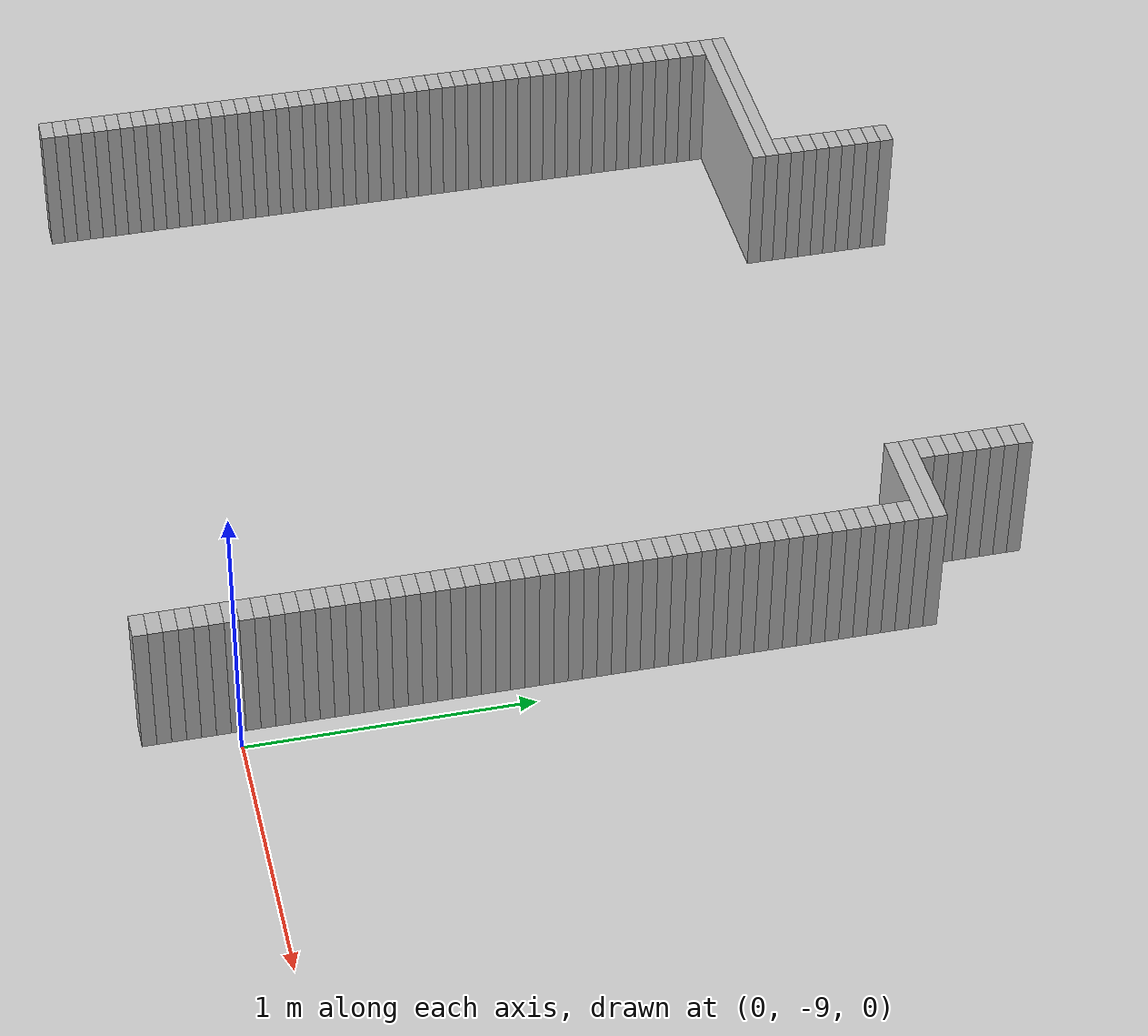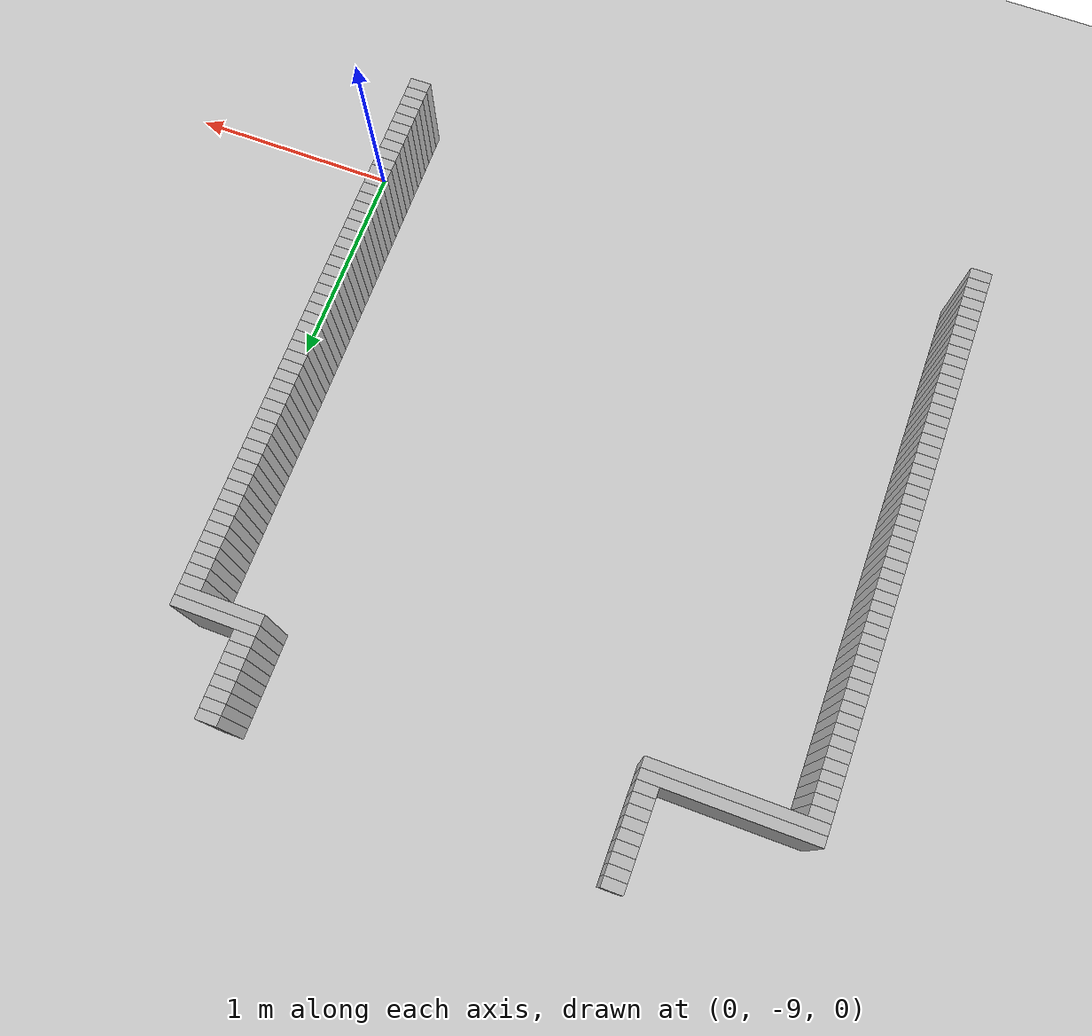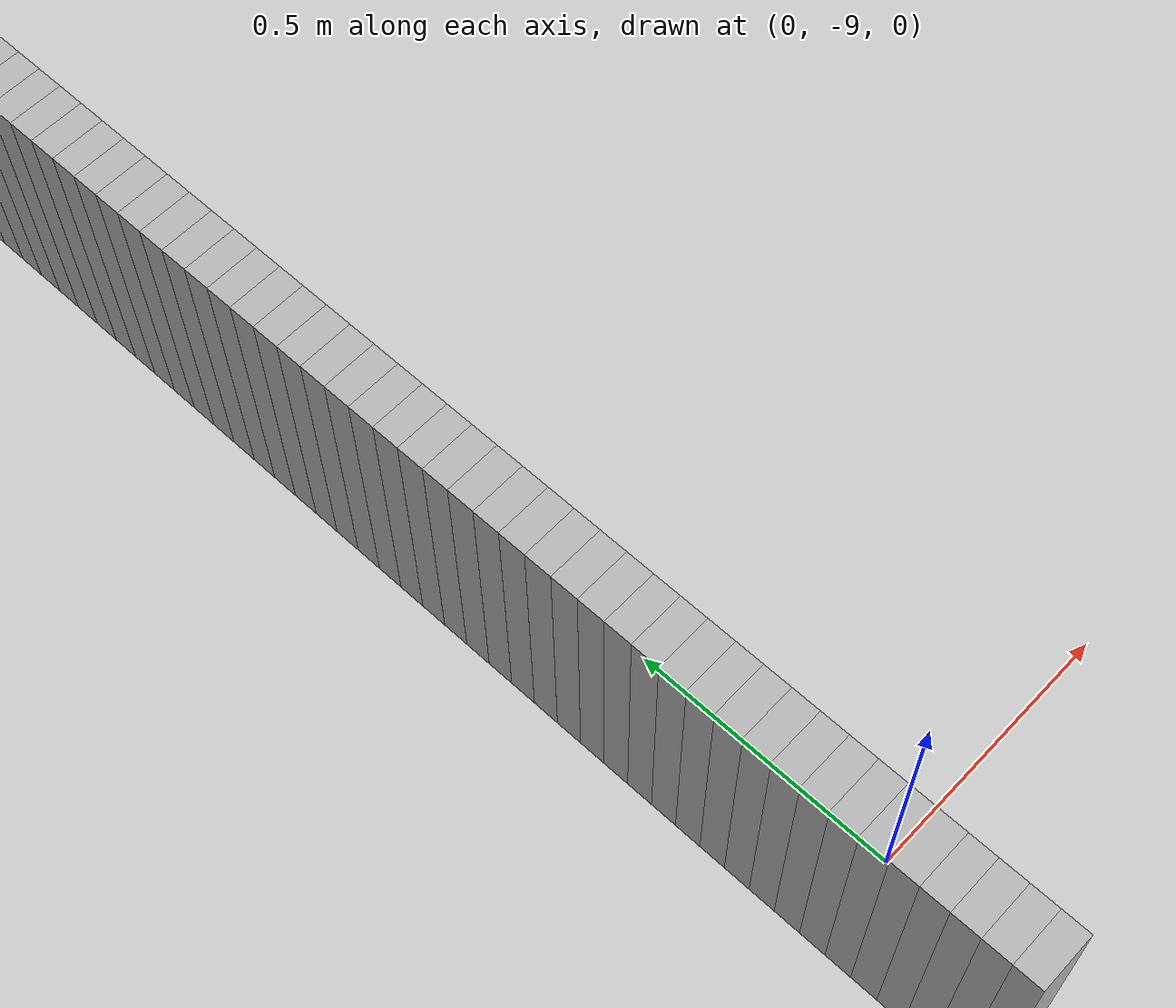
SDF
<sdf version="1.6">
 <world name="optimized_map_world">
  <include><uri>model://sun</uri></include>
  <include><uri>model://ground_plane</uri></include>
  <model name="obstacle_522">
   <static>true</static>
   <link name="link">
    <collision name="collision"><geometry><box><size>0.1 0.05 0.5</size></box></geometry></collision>
    <visual name="visual"><geometry><box><size>0.1 0.05 0.5</size></box></geometry></visual>
   </link>
   <pose>-2.224999999999998 -6.15 0.25 0 0 0</pose>
  </model>
  <model name="obstacle_526">
   <static>true</static>
   <link name="link">
    <collision name="collision"><geometry><box><size>0.1 0.05 0.5</size></box></geometry></collision>
    <visual name="visual"><geometry><box><size>0.1 0.05 0.5</size></box></geometry></visual>
   </link>
   <pose>-2.224999999999998 -6.199999999999999 0.25 0 0 0</pose>
  </model>
  <model name="obstacle_527">
   <static>true</static>
   <link name="link">
    <collision name="collision"><geometry><box><size>0.1 0.05 0.5</size></box></geometry></collision>
    <visual name="visual"><geometry><box><size>0.1 0.05 0.5</size></box></geometry></visual>
   </link>
   <pose>-0.42499999999999716 -6.199999999999999 0.25 0 0 0</pose>
  </model>
  <model name="obstacle_530">
   <static>true</static>
   <link name="link">
    <collision name="collision"><geometry><box><size>0.1 0.05 0.5</size></box></geometry></collision>
    <visual name="visual"><geometry><box><size>0.1 0.05 0.5</size></box></geometry></visual>
   </link>
   <pose>-2.224999999999998 -6.25 0.25 0 0 0</pose>
  </model>
  <model name="obstacle_531">
   <static>true</static>
   <link name="link">
    <collision name="collision"><geometry><box><size>0.1 0.05 0.5</size></box></geometry></collision>
    <visual name="visual"><geometry><box><size>0.1 0.05 0.5</size></box></geometry></visual>
   </link>
   <pose>-0.42499999999999716 -6.25 0.25 0 0 0</pose>
  </model>
  <model name="obstacle_534">
   <static>true</static>
   <link name="link">
    <collision name="collision"><geometry><box><size>0.1 0.05 0.5</size></box></geometry></collision>
    <visual name="visual"><geometry><box><size>0.1 0.05 0.5</size></box></geometry></visual>
   </link>
   <pose>-2.224999999999998 -6.300000000000001 0.25 0 0 0</pose>
  </model>
  <model name="obstacle_535">
   <static>true</static>
   <link name="link">
    <collision name="collision"><geometry><box><size>0.1 0.05 0.5</size></box></geometry></collision>
    <visual name="visual"><geometry><box><size>0.1 0.05 0.5</size></box></geometry></visual>
   </link>
   <pose>-0.42499999999999716 -6.300000000000001 0.25 0 0 0</pose>
  </model>
  <model name="obstacle_538">
   <static>true</static>
   <link name="link">
    <collision name="collision"><geometry><box><size>0.1 0.05 0.5</size></box></geometry></collision>
    <visual name="visual"><geometry><box><size>0.1 0.05 0.5</size></box></geometry></visual>
   </link>
   <pose>-2.224999999999998 -6.35 0.25 0 0 0</pose>
  </model>
  <model name="obstacle_539">
   <static>true</static>
   <link name="link">
    <collision name="collision"><geometry><box><size>0.1 0.05 0.5</size></box></geometry></collision>
    <visual name="visual"><geometry><box><size>0.1 0.05 0.5</size></box></geometry></visual>
   </link>
   <pose>-0.42499999999999716 -6.35 0.25 0 0 0</pose>
  </model>
  <model name="obstacle_542">
   <static>true</static>
   <link name="link">
    <collision name="collision"><geometry><box><size>0.1 0.05 0.5</size></box></geometry></collision>
    <visual name="visual"><geometry><box><size>0.1 0.05 0.5</size></box></geometry></visual>
   </link>
   <pose>-2.224999999999998 -6.4 0.25 0 0 0</pose>
  </model>
  <model name="obstacle_543">
   <static>true</static>
   <link name="link">
    <collision name="collision"><geometry><box><size>0.1 0.05 0.5</size></box></geometry></collision>
    <visual name="visual"><geometry><box><size>0.1 0.05 0.5</size></box></geometry></visual>
   </link>
   <pose>-0.42499999999999716 -6.4 0.25 0 0 0</pose>
  </model>
  <model name="obstacle_546">
   <static>true</static>
   <link name="link">
    <collision name="collision"><geometry><box><size>0.1 0.05 0.5</size></box></geometry></collision>
    <visual name="visual"><geometry><box><size>0.1 0.05 0.5</size></box></geometry></visual>
   </link>
   <pose>-2.224999999999998 -6.449999999999999 0.25 0 0 0</pose>
  </model>
  <model name="obstacle_547">
   <static>true</static>
   <link name="link">
    <collision name="collision"><geometry><box><size>0.1 0.05 0.5</size></box></geometry></collision>
    <visual name="visual"><geometry><box><size>0.1 0.05 0.5</size></box></geometry></visual>
   </link>
   <pose>-0.42499999999999716 -6.449999999999999 0.25 0 0 0</pose>
  </model>
  <model name="obstacle_550">
   <static>true</static>
   <link name="link">
    <collision name="collision"><geometry><box><size>0.1 0.05 0.5</size></box></geometry></collision>
    <visual name="visual"><geometry><box><size>0.1 0.05 0.5</size></box></geometry></visual>
   </link>
   <pose>-2.224999999999998 -6.5 0.25 0 0 0</pose>
  </model>
  <model name="obstacle_551">
   <static>true</static>
   <link name="link">
    <collision name="collision"><geometry><box><size>0.1 0.05 0.5</size></box></geometry></collision>
    <visual name="visual"><geometry><box><size>0.1 0.05 0.5</size></box></geometry></visual>
   </link>
   <pose>-0.42499999999999716 -6.5 0.25 0 0 0</pose>
  </model>
  <model name="obstacle_554">
   <static>true</static>
   <link name="link">
    <collision name="collision"><geometry><box><size>0.1 0.05 0.5</size></box></geometry></collision>
    <visual name="visual"><geometry><box><size>0.1 0.05 0.5</size></box></geometry></visual>
   </link>
   <pose>-2.224999999999998 -6.550000000000001 0.25 0 0 0</pose>
  </model>
  <model name="obstacle_555">
   <static>true</static>
   <link name="link">
    <collision name="collision"><geometry><box><size>0.1 0.05 0.5</size></box></geometry></collision>
    <visual name="visual"><geometry><box><size>0.1 0.05 0.5</size></box></geometry></visual>
   </link>
   <pose>-0.42499999999999716 -6.550000000000001 0.25 0 0 0</pose>
  </model>
  <model name="obstacle_558">
   <static>true</static>
   <link name="link">
    <collision name="collision"><geometry><box><size>0.8 0.05 0.5</size></box></geometry></collision>
    <visual name="visual"><geometry><box><size>0.8 0.05 0.5</size></box></geometry></visual>
   </link>
   <pose>-2.5749999999999993 -6.6 0.25 0 0 0</pose>
  </model>
  <model name="obstacle_559">
   <static>true</static>
   <link name="link">
    <collision name="collision"><geometry><box><size>0.4 0.05 0.5</size></box></geometry></collision>
    <visual name="visual"><geometry><box><size>0.4 0.05 0.5</size></box></geometry></visual>
   </link>
   <pose>-0.2749999999999986 -6.6 0.25 0 0 0</pose>
  </model>
  <model name="obstacle_562">
   <static>true</static>
   <link name="link">
    <collision name="collision"><geometry><box><size>0.8 0.05 0.5</size></box></geometry></collision>
    <visual name="visual"><geometry><box><size>0.8 0.05 0.5</size></box></geometry></visual>
   </link>
   <pose>-2.5749999999999993 -6.65 0.25 0 0 0</pose>
  </model>
  <model name="obstacle_563">
   <static>true</static>
   <link name="link">
    <collision name="collision"><geometry><box><size>0.4 0.05 0.5</size></box></geometry></collision>
    <visual name="visual"><geometry><box><size>0.4 0.05 0.5</size></box></geometry></visual>
   </link>
   <pose>-0.2749999999999986 -6.65 0.25 0 0 0</pose>
  </model>
  <model name="obstacle_566">
   <static>true</static>
   <link name="link">
    <collision name="collision"><geometry><box><size>0.1 0.05 0.5</size></box></geometry></collision>
    <visual name="visual"><geometry><box><size>0.1 0.05 0.5</size></box></geometry></visual>
   </link>
   <pose>-2.924999999999999 -6.699999999999999 0.25 0 0 0</pose>
  </model>
  <model name="obstacle_567">
   <static>true</static>
   <link name="link">
    <collision name="collision"><geometry><box><size>0.1 0.05 0.5</size></box></geometry></collision>
    <visual name="visual"><geometry><box><size>0.1 0.05 0.5</size></box></geometry></visual>
   </link>
   <pose>-0.125 -6.699999999999999 0.25 0 0 0</pose>
  </model>
  <model name="obstacle_570">
   <static>true</static>
   <link name="link">
    <collision name="collision"><geometry><box><size>0.1 0.05 0.5</size></box></geometry></collision>
    <visual name="visual"><geometry><box><size>0.1 0.05 0.5</size></box></geometry></visual>
   </link>
   <pose>-2.924999999999999 -6.75 0.25 0 0 0</pose>
  </model>
  <model name="obstacle_571">
   <static>true</static>
   <link name="link">
    <collision name="collision"><geometry><box><size>0.1 0.05 0.5</size></box></geometry></collision>
    <visual name="visual"><geometry><box><size>0.1 0.05 0.5</size></box></geometry></visual>
   </link>
   <pose>-0.125 -6.75 0.25 0 0 0</pose>
  </model>
  <model name="obstacle_574">
   <static>true</static>
   <link name="link">
    <collision name="collision"><geometry><box><size>0.1 0.05 0.5</size></box></geometry></collision>
    <visual name="visual"><geometry><box><size>0.1 0.05 0.5</size></box></geometry></visual>
   </link>
   <pose>-2.924999999999999 -6.800000000000001 0.25 0 0 0</pose>
  </model>
  <model name="obstacle_575">
   <static>true</static>
   <link name="link">
    <collision name="collision"><geometry><box><size>0.1 0.05 0.5</size></box></geometry></collision>
    <visual name="visual"><geometry><box><size>0.1 0.05 0.5</size></box></geometry></visual>
   </link>
   <pose>-0.125 -6.800000000000001 0.25 0 0 0</pose>
  </model>
  <model name="obstacle_578">
   <static>true</static>
   <link name="link">
    <collision name="collision"><geometry><box><size>0.1 0.05 0.5</size></box></geometry></collision>
    <visual name="visual"><geometry><box><size>0.1 0.05 0.5</size></box></geometry></visual>
   </link>
   <pose>-2.924999999999999 -6.85 0.25 0 0 0</pose>
  </model>
  <model name="obstacle_579">
   <static>true</static>
   <link name="link">
    <collision name="collision"><geometry><box><size>0.1 0.05 0.5</size></box></geometry></collision>
    <visual name="visual"><geometry><box><size>0.1 0.05 0.5</size></box></geometry></visual>
   </link>
   <pose>-0.125 -6.85 0.25 0 0 0</pose>
  </model>
  <model name="obstacle_582">
   <static>true</static>
   <link name="link">
    <collision name="collision"><geometry><box><size>0.1 0.05 0.5</size></box></geometry></collision>
    <visual name="visual"><geometry><box><size>0.1 0.05 0.5</size></box></geometry></visual>
   </link>
   <pose>-2.924999999999999 -6.9 0.25 0 0 0</pose>
  </model>
  <model name="obstacle_583">
   <static>true</static>
   <link name="link">
    <collision name="collision"><geometry><box><size>0.1 0.05 0.5</size></box></geometry></collision>
    <visual name="visual"><geometry><box><size>0.1 0.05 0.5</size></box></geometry></visual>
   </link>
   <pose>-0.125 -6.9 0.25 0 0 0</pose>
  </model>
  <model name="obstacle_586">
   <static>true</static>
   <link name="link">
    <collision name="collision"><geometry><box><size>0.1 0.05 0.5</size></box></geometry></collision>
    <visual name="visual"><geometry><box><size>0.1 0.05 0.5</size></box></geometry></visual>
   </link>
   <pose>-2.924999999999999 -6.949999999999999 0.25 0 0 0</pose>
  </model>
  <model name="obstacle_587">
   <static>true</static>
   <link name="link">
    <collision name="collision"><geometry><box><size>0.1 0.05 0.5</size></box></geometry></collision>
    <visual name="visual"><geometry><box><size>0.1 0.05 0.5</size></box></geometry></visual>
   </link>
   <pose>-0.125 -6.949999999999999 0.25 0 0 0</pose>
  </model>
  <model name="obstacle_590">
   <static>true</static>
   <link name="link">
    <collision name="collision"><geometry><box><size>0.1 0.05 0.5</size></box></geometry></collision>
    <visual name="visual"><geometry><box><size>0.1 0.05 0.5</size></box></geometry></visual>
   </link>
   <pose>-2.924999999999999 -7.0 0.25 0 0 0</pose>
  </model>
  <model name="obstacle_591">
   <static>true</static>
   <link name="link">
    <collision name="collision"><geometry><box><size>0.1 0.05 0.5</size></box></geometry></collision>
    <visual name="visual"><geometry><box><size>0.1 0.05 0.5</size></box></geometry></visual>
   </link>
   <pose>-0.125 -7.0 0.25 0 0 0</pose>
  </model>
  <model name="obstacle_594">
   <static>true</static>
   <link name="link">
    <collision name="collision"><geometry><box><size>0.1 0.05 0.5</size></box></geometry></collision>
    <visual name="visual"><geometry><box><size>0.1 0.05 0.5</size></box></geometry></visual>
   </link>
   <pose>-2.924999999999999 -7.050000000000001 0.25 0 0 0</pose>
  </model>
  <model name="obstacle_595">
   <static>true</static>
   <link name="link">
    <collision name="collision"><geometry><box><size>0.1 0.05 0.5</size></box></geometry></collision>
    <visual name="visual"><geometry><box><size>0.1 0.05 0.5</size></box></geometry></visual>
   </link>
   <pose>-0.125 -7.050000000000001 0.25 0 0 0</pose>
  </model>
  <model name="obstacle_598">
   <static>true</static>
   <link name="link">
    <collision name="collision"><geometry><box><size>0.1 0.05 0.5</size></box></geometry></collision>
    <visual name="visual"><geometry><box><size>0.1 0.05 0.5</size></box></geometry></visual>
   </link>
   <pose>-2.924999999999999 -7.1 0.25 0 0 0</pose>
  </model>
  <model name="obstacle_599">
   <static>true</static>
   <link name="link">
    <collision name="collision"><geometry><box><size>0.1 0.05 0.5</size></box></geometry></collision>
    <visual name="visual"><geometry><box><size>0.1 0.05 0.5</size></box></geometry></visual>
   </link>
   <pose>-0.125 -7.1 0.25 0 0 0</pose>
  </model>
  <model name="obstacle_602">
   <static>true</static>
   <link name="link">
    <collision name="collision"><geometry><box><size>0.1 0.05 0.5</size></box></geometry></collision>
    <visual name="visual"><geometry><box><size>0.1 0.05 0.5</size></box></geometry></visual>
   </link>
   <pose>-2.924999999999999 -7.15 0.25 0 0 0</pose>
  </model>
  <model name="obstacle_603">
   <static>true</static>
   <link name="link">
    <collision name="collision"><geometry><box><size>0.1 0.05 0.5</size></box></geometry></collision>
    <visual name="visual"><geometry><box><size>0.1 0.05 0.5</size></box></geometry></visual>
   </link>
   <pose>-0.125 -7.15 0.25 0 0 0</pose>
  </model>
  <model name="obstacle_606">
   <static>true</static>
   <link name="link">
    <collision name="collision"><geometry><box><size>0.1 0.05 0.5</size></box></geometry></collision>
    <visual name="visual"><geometry><box><size>0.1 0.05 0.5</size></box></geometry></visual>
   </link>
   <pose>-2.924999999999999 -7.199999999999999 0.25 0 0 0</pose>
  </model>
  <model name="obstacle_607">
   <static>true</static>
   <link name="link">
    <collision name="collision"><geometry><box><size>0.1 0.05 0.5</size></box></geometry></collision>
    <visual name="visual"><geometry><box><size>0.1 0.05 0.5</size></box></geometry></visual>
   </link>
   <pose>-0.125 -7.199999999999999 0.25 0 0 0</pose>
  </model>
  <model name="obstacle_610">
   <static>true</static>
   <link name="link">
    <collision name="collision"><geometry><box><size>0.1 0.05 0.5</size></box></geometry></collision>
    <visual name="visual"><geometry><box><size>0.1 0.05 0.5</size></box></geometry></visual>
   </link>
   <pose>-2.924999999999999 -7.25 0.25 0 0 0</pose>
  </model>
  <model name="obstacle_611">
   <static>true</static>
   <link name="link">
    <collision name="collision"><geometry><box><size>0.1 0.05 0.5</size></box></geometry></collision>
    <visual name="visual"><geometry><box><size>0.1 0.05 0.5</size></box></geometry></visual>
   </link>
   <pose>-0.125 -7.25 0.25 0 0 0</pose>
  </model>
  <model name="obstacle_614">
   <static>true</static>
   <link name="link">
    <collision name="collision"><geometry><box><size>0.1 0.05 0.5</size></box></geometry></collision>
    <visual name="visual"><geometry><box><size>0.1 0.05 0.5</size></box></geometry></visual>
   </link>
   <pose>-2.924999999999999 -7.300000000000001 0.25 0 0 0</pose>
  </model>
  <model name="obstacle_615">
   <static>true</static>
   <link name="link">
    <collision name="collision"><geometry><box><size>0.1 0.05 0.5</size></box></geometry></collision>
    <visual name="visual"><geometry><box><size>0.1 0.05 0.5</size></box></geometry></visual>
   </link>
   <pose>-0.125 -7.300000000000001 0.25 0 0 0</pose>
  </model>
  <model name="obstacle_618">
   <static>true</static>
   <link name="link">
    <collision name="collision"><geometry><box><size>0.1 0.05 0.5</size></box></geometry></collision>
    <visual name="visual"><geometry><box><size>0.1 0.05 0.5</size></box></geometry></visual>
   </link>
   <pose>-2.924999999999999 -7.35 0.25 0 0 0</pose>
  </model>
  <model name="obstacle_619">
   <static>true</static>
   <link name="link">
    <collision name="collision"><geometry><box><size>0.1 0.05 0.5</size></box></geometry></collision>
    <visual name="visual"><geometry><box><size>0.1 0.05 0.5</size></box></geometry></visual>
   </link>
   <pose>-0.125 -7.35 0.25 0 0 0</pose>
  </model>
  <model name="obstacle_622">
   <static>true</static>
   <link name="link">
    <collision name="collision"><geometry><box><size>0.1 0.05 0.5</size></box></geometry></collision>
    <visual name="visual"><geometry><box><size>0.1 0.05 0.5</size></box></geometry></visual>
   </link>
   <pose>-2.924999999999999 -7.4 0.25 0 0 0</pose>
  </model>
  <model name="obstacle_623">
   <static>true</static>
   <link name="link">
    <collision name="collision"><geometry><box><size>0.1 0.05 0.5</size></box></geometry></collision>
    <visual name="visual"><geometry><box><size>0.1 0.05 0.5</size></box></geometry></visual>
   </link>
   <pose>-0.125 -7.4 0.25 0 0 0</pose>
  </model>
  <model name="obstacle_626">
   <static>true</static>
   <link name="link">
    <collision name="collision"><geometry><box><size>0.1 0.05 0.5</size></box></geometry></collision>
    <visual name="visual"><geometry><box><size>0.1 0.05 0.5</size></box></geometry></visual>
   </link>
   <pose>-2.924999999999999 -7.449999999999999 0.25 0 0 0</pose>
  </model>
  <model name="obstacle_627">
   <static>true</static>
   <link name="link">
    <collision name="collision"><geometry><box><size>0.1 0.05 0.5</size></box></geometry></collision>
    <visual name="visual"><geometry><box><size>0.1 0.05 0.5</size></box></geometry></visual>
   </link>
   <pose>-0.125 -7.449999999999999 0.25 0 0 0</pose>
  </model>
  <model name="obstacle_630">
   <static>true</static>
   <link name="link">
    <collision name="collision"><geometry><box><size>0.1 0.05 0.5</size></box></geometry></collision>
    <visual name="visual"><geometry><box><size>0.1 0.05 0.5</size></box></geometry></visual>
   </link>
   <pose>-2.924999999999999 -7.5 0.25 0 0 0</pose>
  </model>
  <model name="obstacle_631">
   <static>true</static>
   <link name="link">
    <collision name="collision"><geometry><box><size>0.1 0.05 0.5</size></box></geometry></collision>
    <visual name="visual"><geometry><box><size>0.1 0.05 0.5</size></box></geometry></visual>
   </link>
   <pose>-0.125 -7.5 0.25 0 0 0</pose>
  </model>
  <model name="obstacle_634">
   <static>true</static>
   <link name="link">
    <collision name="collision"><geometry><box><size>0.1 0.05 0.5</size></box></geometry></collision>
    <visual name="visual"><geometry><box><size>0.1 0.05 0.5</size></box></geometry></visual>
   </link>
   <pose>-2.924999999999999 -7.550000000000001 0.25 0 0 0</pose>
  </model>
  <model name="obstacle_635">
   <static>true</static>
   <link name="link">
    <collision name="collision"><geometry><box><size>0.1 0.05 0.5</size></box></geometry></collision>
    <visual name="visual"><geometry><box><size>0.1 0.05 0.5</size></box></geometry></visual>
   </link>
   <pose>-0.125 -7.550000000000001 0.25 0 0 0</pose>
  </model>
  <model name="obstacle_638">
   <static>true</static>
   <link name="link">
    <collision name="collision"><geometry><box><size>0.1 0.05 0.5</size></box></geometry></collision>
    <visual name="visual"><geometry><box><size>0.1 0.05 0.5</size></box></geometry></visual>
   </link>
   <pose>-2.924999999999999 -7.6 0.25 0 0 0</pose>
  </model>
  <model name="obstacle_639">
   <static>true</static>
   <link name="link">
    <collision name="collision"><geometry><box><size>0.1 0.05 0.5</size></box></geometry></collision>
    <visual name="visual"><geometry><box><size>0.1 0.05 0.5</size></box></geometry></visual>
   </link>
   <pose>-0.125 -7.6 0.25 0 0 0</pose>
  </model>
  <model name="obstacle_642">
   <static>true</static>
   <link name="link">
    <collision name="collision"><geometry><box><size>0.1 0.05 0.5</size></box></geometry></collision>
    <visual name="visual"><geometry><box><size>0.1 0.05 0.5</size></box></geometry></visual>
   </link>
   <pose>-2.924999999999999 -7.65 0.25 0 0 0</pose>
  </model>
  <model name="obstacle_643">
   <static>true</static>
   <link name="link">
    <collision name="collision"><geometry><box><size>0.1 0.05 0.5</size></box></geometry></collision>
    <visual name="visual"><geometry><box><size>0.1 0.05 0.5</size></box></geometry></visual>
   </link>
   <pose>-0.125 -7.65 0.25 0 0 0</pose>
  </model>
  <model name="obstacle_646">
   <static>true</static>
   <link name="link">
    <collision name="collision"><geometry><box><size>0.1 0.05 0.5</size></box></geometry></collision>
    <visual name="visual"><geometry><box><size>0.1 0.05 0.5</size></box></geometry></visual>
   </link>
   <pose>-2.924999999999999 -7.699999999999999 0.25 0 0 0</pose>
  </model>
  <model name="obstacle_647">
   <static>true</static>
   <link name="link">
    <collision name="collision"><geometry><box><size>0.1 0.05 0.5</size></box></geometry></collision>
    <visual name="visual"><geometry><box><size>0.1 0.05 0.5</size></box></geometry></visual>
   </link>
   <pose>-0.125 -7.699999999999999 0.25 0 0 0</pose>
  </model>
  <model name="obstacle_650">
   <static>true</static>
   <link name="link">
    <collision name="collision"><geometry><box><size>0.1 0.05 0.5</size></box></geometry></collision>
    <visual name="visual"><geometry><box><size>0.1 0.05 0.5</size></box></geometry></visual>
   </link>
   <pose>-2.924999999999999 -7.75 0.25 0 0 0</pose>
  </model>
  <model name="obstacle_651">
   <static>true</static>
   <link name="link">
    <collision name="collision"><geometry><box><size>0.1 0.05 0.5</size></box></geometry></collision>
    <visual name="visual"><geometry><box><size>0.1 0.05 0.5</size></box></geometry></visual>
   </link>
   <pose>-0.125 -7.75 0.25 0 0 0</pose>
  </model>
  <model name="obstacle_654">
   <static>true</static>
   <link name="link">
    <collision name="collision"><geometry><box><size>0.1 0.05 0.5</size></box></geometry></collision>
    <visual name="visual"><geometry><box><size>0.1 0.05 0.5</size></box></geometry></visual>
   </link>
   <pose>-2.924999999999999 -7.800000000000001 0.25 0 0 0</pose>
  </model>
  <model name="obstacle_655">
   <static>true</static>
   <link name="link">
    <collision name="collision"><geometry><box><size>0.1 0.05 0.5</size></box></geometry></collision>
    <visual name="visual"><geometry><box><size>0.1 0.05 0.5</size></box></geometry></visual>
   </link>
   <pose>-0.125 -7.800000000000001 0.25 0 0 0</pose>
  </model>
  <model name="obstacle_658">
   <static>true</static>
   <link name="link">
    <collision name="collision"><geometry><box><size>0.1 0.05 0.5</size></box></geometry></collision>
    <visual name="visual"><geometry><box><size>0.1 0.05 0.5</size></box></geometry></visual>
   </link>
   <pose>-2.924999999999999 -7.85 0.25 0 0 0</pose>
  </model>
  <model name="obstacle_659">
   <static>true</static>
   <link name="link">
    <collision name="collision"><geometry><box><size>0.1 0.05 0.5</size></box></geometry></collision>
    <visual name="visual"><geometry><box><size>0.1 0.05 0.5</size></box></geometry></visual>
   </link>
   <pose>-0.125 -7.85 0.25 0 0 0</pose>
  </model>
  <model name="obstacle_662">
   <static>true</static>
   <link name="link">
    <collision name="collision"><geometry><box><size>0.1 0.05 0.5</size></box></geometry></collision>
    <visual name="visual"><geometry><box><size>0.1 0.05 0.5</size></box></geometry></visual>
   </link>
   <pose>-2.924999999999999 -7.9 0.25 0 0 0</pose>
  </model>
  <model name="obstacle_663">
   <static>true</static>
   <link name="link">
    <collision name="collision"><geometry><box><size>0.1 0.05 0.5</size></box></geometry></collision>
    <visual name="visual"><geometry><box><size>0.1 0.05 0.5</size></box></geometry></visual>
   </link>
   <pose>-0.125 -7.9 0.25 0 0 0</pose>
  </model>
  <model name="obstacle_666">
   <static>true</static>
   <link name="link">
    <collision name="collision"><geometry><box><size>0.1 0.05 0.5</size></box></geometry></collision>
    <visual name="visual"><geometry><box><size>0.1 0.05 0.5</size></box></geometry></visual>
   </link>
   <pose>-2.924999999999999 -7.949999999999999 0.25 0 0 0</pose>
  </model>
  <model name="obstacle_667">
   <static>true</static>
   <link name="link">
    <collision name="collision"><geometry><box><size>0.1 0.05 0.5</size></box></geometry></collision>
    <visual name="visual"><geometry><box><size>0.1 0.05 0.5</size></box></geometry></visual>
   </link>
   <pose>-0.125 -7.949999999999999 0.25 0 0 0</pose>
  </model>
  <model name="obstacle_670">
   <static>true</static>
   <link name="link">
    <collision name="collision"><geometry><box><size>0.1 0.05 0.5</size></box></geometry></collision>
    <visual name="visual"><geometry><box><size>0.1 0.05 0.5</size></box></geometry></visual>
   </link>
   <pose>-2.924999999999999 -8.0 0.25 0 0 0</pose>
  </model>
  <model name="obstacle_671">
   <static>true</static>
   <link name="link">
    <collision name="collision"><geometry><box><size>0.1 0.05 0.5</size></box></geometry></collision>
    <visual name="visual"><geometry><box><size>0.1 0.05 0.5</size></box></geometry></visual>
   </link>
   <pose>-0.125 -8.0 0.25 0 0 0</pose>
  </model>
  <model name="obstacle_674">
   <static>true</static>
   <link name="link">
    <collision name="collision"><geometry><box><size>0.1 0.05 0.5</size></box></geometry></collision>
    <visual name="visual"><geometry><box><size>0.1 0.05 0.5</size></box></geometry></visual>
   </link>
   <pose>-2.924999999999999 -8.05 0.25 0 0 0</pose>
  </model>
  <model name="obstacle_675">
   <static>true</static>
   <link name="link">
    <collision name="collision"><geometry><box><size>0.1 0.05 0.5</size></box></geometry></collision>
    <visual name="visual"><geometry><box><size>0.1 0.05 0.5</size></box></geometry></visual>
   </link>
   <pose>-0.125 -8.05 0.25 0 0 0</pose>
  </model>
  <model name="obstacle_678">
   <static>true</static>
   <link name="link">
    <collision name="collision"><geometry><box><size>0.1 0.05 0.5</size></box></geometry></collision>
    <visual name="visual"><geometry><box><size>0.1 0.05 0.5</size></box></geometry></visual>
   </link>
   <pose>-2.924999999999999 -8.1 0.25 0 0 0</pose>
  </model>
  <model name="obstacle_679">
   <static>true</static>
   <link name="link">
    <collision name="collision"><geometry><box><size>0.1 0.05 0.5</size></box></geometry></collision>
    <visual name="visual"><geometry><box><size>0.1 0.05 0.5</size></box></geometry></visual>
   </link>
   <pose>-0.125 -8.1 0.25 0 0 0</pose>
  </model>
  <model name="obstacle_682">
   <static>true</static>
   <link name="link">
    <collision name="collision"><geometry><box><size>0.1 0.05 0.5</size></box></geometry></collision>
    <visual name="visual"><geometry><box><size>0.1 0.05 0.5</size></box></geometry></visual>
   </link>
   <pose>-2.924999999999999 -8.15 0.25 0 0 0</pose>
  </model>
  <model name="obstacle_683">
   <static>true</static>
   <link name="link">
    <collision name="collision"><geometry><box><size>0.1 0.05 0.5</size></box></geometry></collision>
    <visual name="visual"><geometry><box><size>0.1 0.05 0.5</size></box></geometry></visual>
   </link>
   <pose>-0.125 -8.15 0.25 0 0 0</pose>
  </model>
  <model name="obstacle_686">
   <static>true</static>
   <link name="link">
    <collision name="collision"><geometry><box><size>0.1 0.05 0.5</size></box></geometry></collision>
    <visual name="visual"><geometry><box><size>0.1 0.05 0.5</size></box></geometry></visual>
   </link>
   <pose>-2.924999999999999 -8.2 0.25 0 0 0</pose>
  </model>
  <model name="obstacle_687">
   <static>true</static>
   <link name="link">
    <collision name="collision"><geometry><box><size>0.1 0.05 0.5</size></box></geometry></collision>
    <visual name="visual"><geometry><box><size>0.1 0.05 0.5</size></box></geometry></visual>
   </link>
   <pose>-0.125 -8.2 0.25 0 0 0</pose>
  </model>
  <model name="obstacle_690">
   <static>true</static>
   <link name="link">
    <collision name="collision"><geometry><box><size>0.1 0.05 0.5</size></box></geometry></collision>
    <visual name="visual"><geometry><box><size>0.1 0.05 0.5</size></box></geometry></visual>
   </link>
   <pose>-2.924999999999999 -8.25 0.25 0 0 0</pose>
  </model>
  <model name="obstacle_691">
   <static>true</static>
   <link name="link">
    <collision name="collision"><geometry><box><size>0.1 0.05 0.5</size></box></geometry></collision>
    <visual name="visual"><geometry><box><size>0.1 0.05 0.5</size></box></geometry></visual>
   </link>
   <pose>-0.125 -8.25 0.25 0 0 0</pose>
  </model>
  <model name="obstacle_694">
   <static>true</static>
   <link name="link">
    <collision name="collision"><geometry><box><size>0.1 0.05 0.5</size></box></geometry></collision>
    <visual name="visual"><geometry><box><size>0.1 0.05 0.5</size></box></geometry></visual>
   </link>
   <pose>-2.924999999999999 -8.3 0.25 0 0 0</pose>
  </model>
  <model name="obstacle_695">
   <static>true</static>
   <link name="link">
    <collision name="collision"><geometry><box><size>0.1 0.05 0.5</size></box></geometry></collision>
    <visual name="visual"><geometry><box><size>0.1 0.05 0.5</size></box></geometry></visual>
   </link>
   <pose>-0.125 -8.3 0.25 0 0 0</pose>
  </model>
  <model name="obstacle_698">
   <static>true</static>
   <link name="link">
    <collision name="collision"><geometry><box><size>0.1 0.05 0.5</size></box></geometry></collision>
    <visual name="visual"><geometry><box><size>0.1 0.05 0.5</size></box></geometry></visual>
   </link>
   <pose>-2.924999999999999 -8.35 0.25 0 0 0</pose>
  </model>
  <model name="obstacle_699">
   <static>true</static>
   <link name="link">
    <collision name="collision"><geometry><box><size>0.1 0.05 0.5</size></box></geometry></collision>
    <visual name="visual"><geometry><box><size>0.1 0.05 0.5</size></box></geometry></visual>
   </link>
   <pose>-0.125 -8.35 0.25 0 0 0</pose>
  </model>
  <model name="obstacle_702">
   <static>true</static>
   <link name="link">
    <collision name="collision"><geometry><box><size>0.1 0.05 0.5</size></box></geometry></collision>
    <visual name="visual"><geometry><box><size>0.1 0.05 0.5</size></box></geometry></visual>
   </link>
   <pose>-2.924999999999999 -8.4 0.25 0 0 0</pose>
  </model>
  <model name="obstacle_703">
   <static>true</static>
   <link name="link">
    <collision name="collision"><geometry><box><size>0.1 0.05 0.5</size></box></geometry></collision>
    <visual name="visual"><geometry><box><size>0.1 0.05 0.5</size></box></geometry></visual>
   </link>
   <pose>-0.125 -8.4 0.25 0 0 0</pose>
  </model>
  <model name="obstacle_706">
   <static>true</static>
   <link name="link">
    <collision name="collision"><geometry><box><size>0.1 0.05 0.5</size></box></geometry></collision>
    <visual name="visual"><geometry><box><size>0.1 0.05 0.5</size></box></geometry></visual>
   </link>
   <pose>-2.924999999999999 -8.45 0.25 0 0 0</pose>
  </model>
  <model name="obstacle_707">
   <static>true</static>
   <link name="link">
    <collision name="collision"><geometry><box><size>0.1 0.05 0.5</size></box></geometry></collision>
    <visual name="visual"><geometry><box><size>0.1 0.05 0.5</size></box></geometry></visual>
   </link>
   <pose>-0.125 -8.45 0.25 0 0 0</pose>
  </model>
  <model name="obstacle_710">
   <static>true</static>
   <link name="link">
    <collision name="collision"><geometry><box><size>0.1 0.05 0.5</size></box></geometry></collision>
    <visual name="visual"><geometry><box><size>0.1 0.05 0.5</size></box></geometry></visual>
   </link>
   <pose>-2.924999999999999 -8.5 0.25 0 0 0</pose>
  </model>
  <model name="obstacle_711">
   <static>true</static>
   <link name="link">
    <collision name="collision"><geometry><box><size>0.1 0.05 0.5</size></box></geometry></collision>
    <visual name="visual"><geometry><box><size>0.1 0.05 0.5</size></box></geometry></visual>
   </link>
   <pose>-0.125 -8.5 0.25 0 0 0</pose>
  </model>
  <model name="obstacle_714">
   <static>true</static>
   <link name="link">
    <collision name="collision"><geometry><box><size>0.1 0.05 0.5</size></box></geometry></collision>
    <visual name="visual"><geometry><box><size>0.1 0.05 0.5</size></box></geometry></visual>
   </link>
   <pose>-2.924999999999999 -8.55 0.25 0 0 0</pose>
  </model>
  <model name="obstacle_715">
   <static>true</static>
   <link name="link">
    <collision name="collision"><geometry><box><size>0.1 0.05 0.5</size></box></geometry></collision>
    <visual name="visual"><geometry><box><size>0.1 0.05 0.5</size></box></geometry></visual>
   </link>
   <pose>-0.125 -8.55 0.25 0 0 0</pose>
  </model>
  <model name="obstacle_718">
   <static>true</static>
   <link name="link">
    <collision name="collision"><geometry><box><size>0.1 0.05 0.5</size></box></geometry></collision>
    <visual name="visual"><geometry><box><size>0.1 0.05 0.5</size></box></geometry></visual>
   </link>
   <pose>-2.924999999999999 -8.6 0.25 0 0 0</pose>
  </model>
  <model name="obstacle_719">
   <static>true</static>
   <link name="link">
    <collision name="collision"><geometry><box><size>0.1 0.05 0.5</size></box></geometry></collision>
    <visual name="visual"><geometry><box><size>0.1 0.05 0.5</size></box></geometry></visual>
   </link>
   <pose>-0.125 -8.6 0.25 0 0 0</pose>
  </model>
  <model name="obstacle_722">
   <static>true</static>
   <link name="link">
    <collision name="collision"><geometry><box><size>0.1 0.05 0.5</size></box></geometry></collision>
    <visual name="visual"><geometry><box><size>0.1 0.05 0.5</size></box></geometry></visual>
   </link>
   <pose>-2.924999999999999 -8.65 0.25 0 0 0</pose>
  </model>
  <model name="obstacle_723">
   <static>true</static>
   <link name="link">
    <collision name="collision"><geometry><box><size>0.1 0.05 0.5</size></box></geometry></collision>
    <visual name="visual"><geometry><box><size>0.1 0.05 0.5</size></box></geometry></visual>
   </link>
   <pose>-0.125 -8.65 0.25 0 0 0</pose>
  </model>
  <model name="obstacle_726">
   <static>true</static>
   <link name="link">
    <collision name="collision"><geometry><box><size>0.1 0.05 0.5</size></box></geometry></collision>
    <visual name="visual"><geometry><box><size>0.1 0.05 0.5</size></box></geometry></visual>
   </link>
   <pose>-2.924999999999999 -8.7 0.25 0 0 0</pose>
  </model>
  <model name="obstacle_727">
   <static>true</static>
   <link name="link">
    <collision name="collision"><geometry><box><size>0.1 0.05 0.5</size></box></geometry></collision>
    <visual name="visual"><geometry><box><size>0.1 0.05 0.5</size></box></geometry></visual>
   </link>
   <pose>-0.125 -8.7 0.25 0 0 0</pose>
  </model>
  <model name="obstacle_730">
   <static>true</static>
   <link name="link">
    <collision name="collision"><geometry><box><size>0.1 0.05 0.5</size></box></geometry></collision>
    <visual name="visual"><geometry><box><size>0.1 0.05 0.5</size></box></geometry></visual>
   </link>
   <pose>-2.924999999999999 -8.75 0.25 0 0 0</pose>
  </model>
  <model name="obstacle_731">
   <static>true</static>
   <link name="link">
    <collision name="collision"><geometry><box><size>0.1 0.05 0.5</size></box></geometry></collision>
    <visual name="visual"><geometry><box><size>0.1 0.05 0.5</size></box></geometry></visual>
   </link>
   <pose>-0.125 -8.75 0.25 0 0 0</pose>
  </model>
  <model name="obstacle_734">
   <static>true</static>
   <link name="link">
    <collision name="collision"><geometry><box><size>0.1 0.05 0.5</size></box></geometry></collision>
    <visual name="visual"><geometry><box><size>0.1 0.05 0.5</size></box></geometry></visual>
   </link>
   <pose>-2.924999999999999 -8.8 0.25 0 0 0</pose>
  </model>
  <model name="obstacle_735">
   <static>true</static>
   <link name="link">
    <collision name="collision"><geometry><box><size>0.1 0.05 0.5</size></box></geometry></collision>
    <visual name="visual"><geometry><box><size>0.1 0.05 0.5</size></box></geometry></visual>
   </link>
   <pose>-0.125 -8.8 0.25 0 0 0</pose>
  </model>
  <model name="obstacle_738">
   <static>true</static>
   <link name="link">
    <collision name="collision"><geometry><box><size>0.1 0.05 0.5</size></box></geometry></collision>
    <visual name="visual"><geometry><box><size>0.1 0.05 0.5</size></box></geometry></visual>
   </link>
   <pose>-2.924999999999999 -8.85 0.25 0 0 0</pose>
  </model>
  <model name="obstacle_739">
   <static>true</static>
   <link name="link">
    <collision name="collision"><geometry><box><size>0.1 0.05 0.5</size></box></geometry></collision>
    <visual name="visual"><geometry><box><size>0.1 0.05 0.5</size></box></geometry></visual>
   </link>
   <pose>-0.125 -8.85 0.25 0 0 0</pose>
  </model>
  <model name="obstacle_742">
   <static>true</static>
   <link name="link">
    <collision name="collision"><geometry><box><size>0.1 0.05 0.5</size></box></geometry></collision>
    <visual name="visual"><geometry><box><size>0.1 0.05 0.5</size></box></geometry></visual>
   </link>
   <pose>-2.924999999999999 -8.9 0.25 0 0 0</pose>
  </model>
  <model name="obstacle_743">
   <static>true</static>
   <link name="link">
    <collision name="collision"><geometry><box><size>0.1 0.05 0.5</size></box></geometry></collision>
    <visual name="visual"><geometry><box><size>0.1 0.05 0.5</size></box></geometry></visual>
   </link>
   <pose>-0.125 -8.9 0.25 0 0 0</pose>
  </model>
  <model name="obstacle_746">
   <static>true</static>
   <link name="link">
    <collision name="collision"><geometry><box><size>0.1 0.05 0.5</size></box></geometry></collision>
    <visual name="visual"><geometry><box><size>0.1 0.05 0.5</size></box></geometry></visual>
   </link>
   <pose>-2.924999999999999 -8.95 0.25 0 0 0</pose>
  </model>
  <model name="obstacle_747">
   <static>true</static>
   <link name="link">
    <collision name="collision"><geometry><box><size>0.1 0.05 0.5</size></box></geometry></collision>
    <visual name="visual"><geometry><box><size>0.1 0.05 0.5</size></box></geometry></visual>
   </link>
   <pose>-0.125 -8.95 0.25 0 0 0</pose>
  </model>
  <model name="obstacle_750">
   <static>true</static>
   <link name="link">
    <collision name="collision"><geometry><box><size>0.1 0.05 0.5</size></box></geometry></collision>
    <visual name="visual"><geometry><box><size>0.1 0.05 0.5</size></box></geometry></visual>
   </link>
   <pose>-2.924999999999999 -9.0 0.25 0 0 0</pose>
  </model>
  <model name="obstacle_751">
   <static>true</static>
   <link name="link">
    <collision name="collision"><geometry><box><size>0.1 0.05 0.5</size></box></geometry></collision>
    <visual name="visual"><geometry><box><size>0.1 0.05 0.5</size></box></geometry></visual>
   </link>
   <pose>-0.125 -9.0 0.25 0 0 0</pose>
  </model>
  <model name="obstacle_754">
   <static>true</static>
   <link name="link">
    <collision name="collision"><geometry><box><size>0.1 0.05 0.5</size></box></geometry></collision>
    <visual name="visual"><geometry><box><size>0.1 0.05 0.5</size></box></geometry></visual>
   </link>
   <pose>-2.924999999999999 -9.05 0.25 0 0 0</pose>
  </model>
  <model name="obstacle_755">
   <static>true</static>
   <link name="link">
    <collision name="collision"><geometry><box><size>0.1 0.05 0.5</size></box></geometry></collision>
    <visual name="visual"><geometry><box><size>0.1 0.05 0.5</size></box></geometry></visual>
   </link>
   <pose>-0.125 -9.05 0.25 0 0 0</pose>
  </model>
  <model name="obstacle_758">
   <static>true</static>
   <link name="link">
    <collision name="collision"><geometry><box><size>0.1 0.05 0.5</size></box></geometry></collision>
    <visual name="visual"><geometry><box><size>0.1 0.05 0.5</size></box></geometry></visual>
   </link>
   <pose>-2.924999999999999 -9.1 0.25 0 0 0</pose>
  </model>
  <model name="obstacle_759">
   <static>true</static>
   <link name="link">
    <collision name="collision"><geometry><box><size>0.1 0.05 0.5</size></box></geometry></collision>
    <visual name="visual"><geometry><box><size>0.1 0.05 0.5</size></box></geometry></visual>
   </link>
   <pose>-0.125 -9.1 0.25 0 0 0</pose>
  </model>
  <model name="obstacle_762">
   <static>true</static>
   <link name="link">
    <collision name="collision"><geometry><box><size>0.1 0.05 0.5</size></box></geometry></collision>
    <visual name="visual"><geometry><box><size>0.1 0.05 0.5</size></box></geometry></visual>
   </link>
   <pose>-2.924999999999999 -9.15 0.25 0 0 0</pose>
  </model>
  <model name="obstacle_763">
   <static>true</static>
   <link name="link">
    <collision name="collision"><geometry><box><size>0.1 0.05 0.5</size></box></geometry></collision>
    <visual name="visual"><geometry><box><size>0.1 0.05 0.5</size></box></geometry></visual>
   </link>
   <pose>-0.125 -9.15 0.25 0 0 0</pose>
  </model>
  <model name="obstacle_766">
   <static>true</static>
   <link name="link">
    <collision name="collision"><geometry><box><size>0.1 0.05 0.5</size></box></geometry></collision>
    <visual name="visual"><geometry><box><size>0.1 0.05 0.5</size></box></geometry></visual>
   </link>
   <pose>-2.924999999999999 -9.2 0.25 0 0 0</pose>
  </model>
  <model name="obstacle_767">
   <static>true</static>
   <link name="link">
    <collision name="collision"><geometry><box><size>0.1 0.05 0.5</size></box></geometry></collision>
    <visual name="visual"><geometry><box><size>0.1 0.05 0.5</size></box></geometry></visual>
   </link>
   <pose>-0.125 -9.2 0.25 0 0 0</pose>
  </model>
  <model name="obstacle_770">
   <static>true</static>
   <link name="link">
    <collision name="collision"><geometry><box><size>0.1 0.05 0.5</size></box></geometry></collision>
    <visual name="visual"><geometry><box><size>0.1 0.05 0.5</size></box></geometry></visual>
   </link>
   <pose>-2.924999999999999 -9.25 0.25 0 0 0</pose>
  </model>
  <model name="obstacle_771">
   <static>true</static>
   <link name="link">
    <collision name="collision"><geometry><box><size>0.1 0.05 0.5</size></box></geometry></collision>
    <visual name="visual"><geometry><box><size>0.1 0.05 0.5</size></box></geometry></visual>
   </link>
   <pose>-0.125 -9.25 0.25 0 0 0</pose>
  </model>
  <model name="obstacle_775">
   <static>true</static>
   <link name="link">
    <collision name="collision"><geometry><box><size>0.1 0.05 0.5</size></box></geometry></collision>
    <visual name="visual"><geometry><box><size>0.1 0.05 0.5</size></box></geometry></visual>
   </link>
   <pose>-0.125 -9.3 0.25 0 0 0</pose>
  </model>
 </world>
</sdf>
